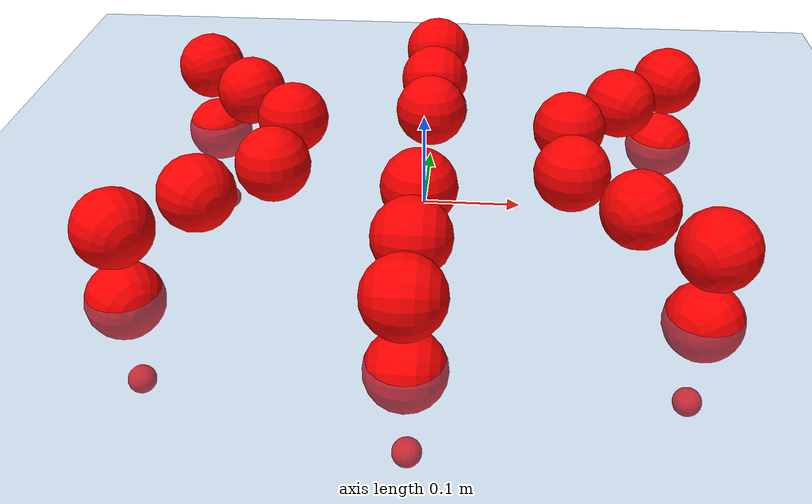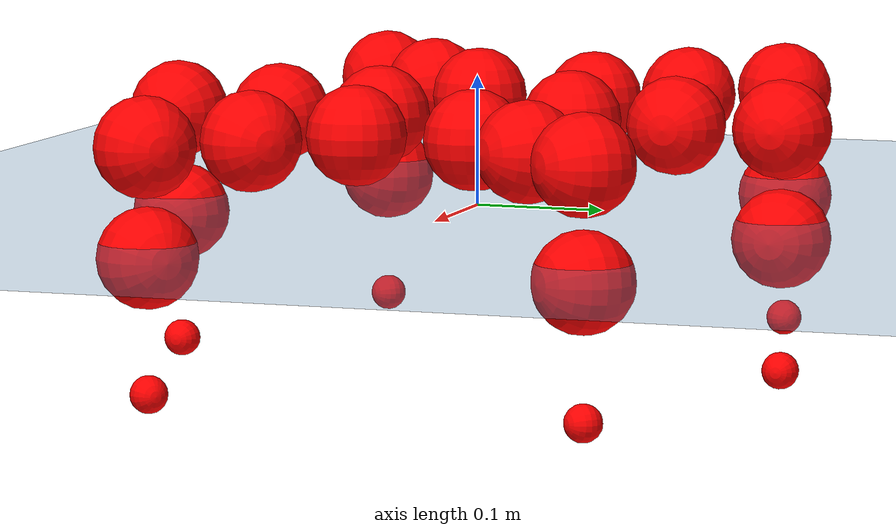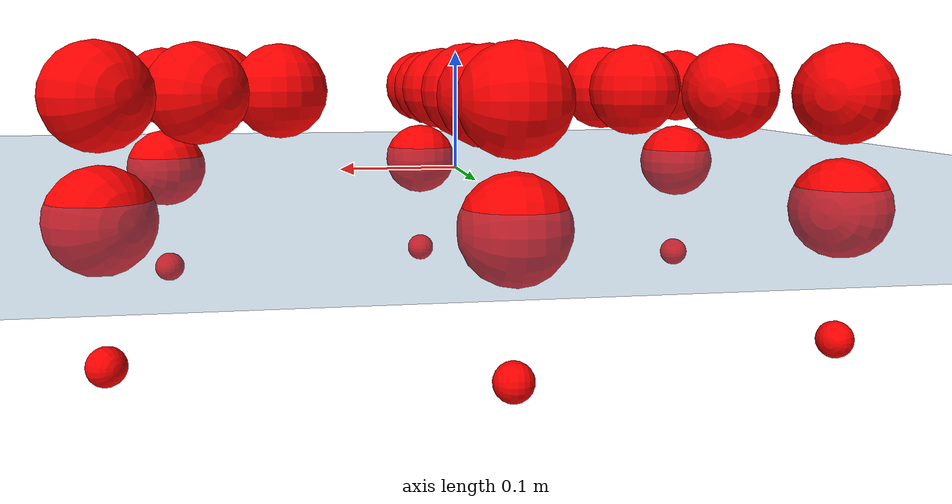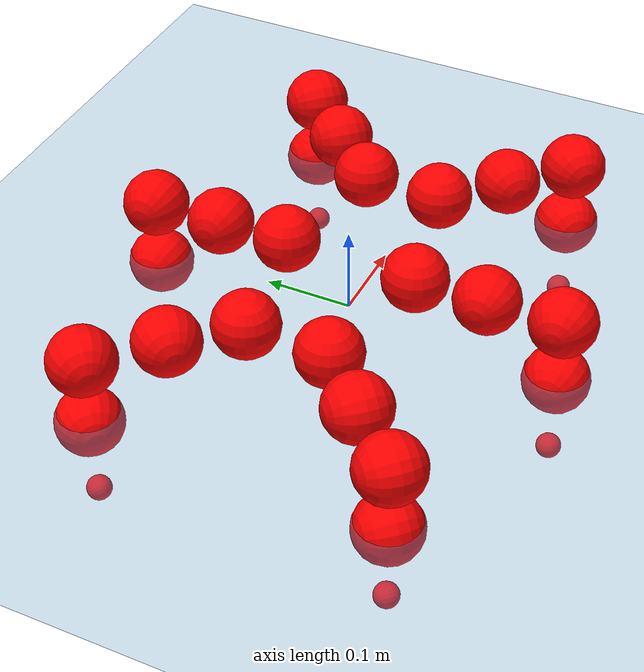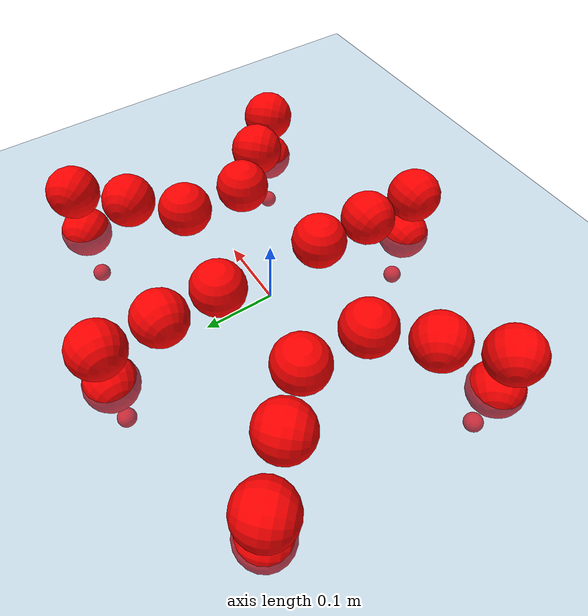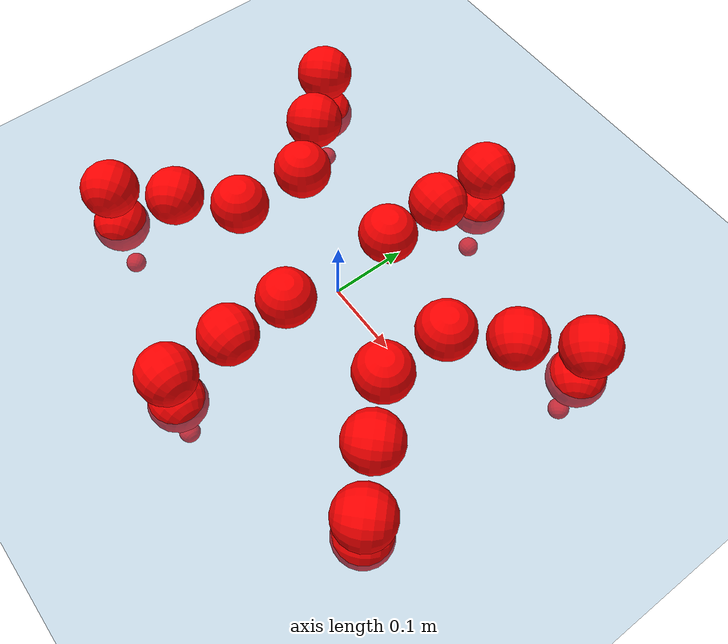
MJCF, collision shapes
<mujoco model="Golem">
  <compiler angle="radian" assetdir="assets" balanceinertia="true" inertiafromgeom="false"/>

  <option timestep="0.005" density="1.2" viscosity="2e-05"/>

  <size nkey="1"/>

  <visual>
    <quality shadowsize="8192"/>
    <map shadowclip="0.5"/>
  </visual>

  <default>
    <default class="/">
      <joint armature="0.01" damping="0.01" frictionloss="0.01"/>
      <geom contype="0" conaffinity="0" group="1" solref="-1000 -80"/>
      <site size="0.01 0.005 0.005" group="5"/>
      <general forcelimited="true" biastype="affine" gainprm="25" biasprm="0 -25 -0.5"/>
      <default class="visual">
        <geom type="mesh" group="2"/>
      </default>
      <default class="collision">
        <geom group="3"/>
      </default>
      <default class="foot">
        <geom size="0.01 0 0" condim="6" group="4" priority="1" solimp="0.015 1 0.01"/>
      </default>
      <default class="reward_collision_sphere">
        <geom group="5" rgba="1 0 0 1"/>
      </default>
    </default>
  </default>

  <asset>
    <texture type="skybox" colorspace="auto" name="//unnamed_texture_0" builtin="gradient" rgb1="0.95 0.95 0.95" rgb2="0.95 0.95 0.95" width="100" height="600"/>
    <texture type="2d" colorspace="auto" name="texplane" builtin="checker" rgb1="0.345 0.575 0.748" rgb2="0.345 0.575 0.748" markrgb="1 1 1" width="512" height="512"/>
    <material name="MatPlane" class="/" texture="texplane" texuniform="true" texrepeat="2 2" specular="0.9"/>
    <mesh name="body" class="/" file="body.stl" scale="0.001 0.001 0.001"/>
    <mesh name="coxa" class="/" file="coxa.stl" scale="0.001 0.001 0.001"/>
    <mesh name="femur" class="/" file="femur.stl" scale="0.001 0.001 0.001"/>
    <mesh name="tibia" class="/" file="tibia.stl" scale="0.001 0.001 0.001"/>
    <mesh name="tarsus" class="/" file="tarsus.stl" scale="0.001 0.001 0.001"/>
  </asset>

  <worldbody>
    <geom name="floor" class="/" size="100 100 0.125" type="plane" group="0" material="MatPlane"/>
    <light name="toplight_shadow" class="/" pos="0 0 5" dir="0.0990148 0.0990148 -0.990148" type="directional" ambient="0.04 0.04 0.04" diffuse="0.55 0.55 0.55" specular="0.12 0.12 0.12"/>
    <light name="toplight_fill" class="/" pos="0 0 5" dir="0.0990148 0.0990148 -0.990148" type="directional" castshadow="false" ambient="0.04 0.04 0.04" diffuse="0.3 0.3 0.3" specular="0.08 0.08 0.08"/>
    <body name="trunk" pos="0.000989808 0.000143307 -0.00155937" quat="1 -4.44786e-05 3.4566e-05 -1.18045e-05">
      <inertial pos="-0.000546195 -0.000368589 -0.00332709" quat="1 -0.000503357 -0.000714404 0.000184873" mass="3.0858" diaginertia="0.00693204 0.00312926 0.0156793"/>
      <joint name="//unnamed_joint_0" type="free"/>
      <geom name="//unnamed_geom_1" class="/" pos="0 0 0.0701529" quat="1 0 0 0" type="mesh" rgba="0.9 0.9 0.9 1" mesh="body"/>
      <site name="imu" class="/" pos="0.122389 -0.00198036 0.108203" size="0.00940745"/>
      <camera name="track" class="/" pos="0 -1.5856 0" quat="0.707107 0.707107 0 0" mode="trackcom"/>
      <camera name="ego_camera" class="/" pos="0.121328 0 0.109614" quat="-0.5 -0.5 0.5 0.5"/>
      <body name="coxa_RR" pos="-0.167288 -0.0669687 0.06962" quat="0.382517 2.95792e-05 6.3212e-05 -0.923949">
        <inertial pos="0.000232303 -0.00141362 0.000550042" quat="0.999999 -0.000444384 0.00020611 -0.0011623" mass="0.162724" diaginertia="0.00693618 0.0030872 0.0153229"/>
        <joint name="coxa_joint_RR" class="/" pos="0 0 0" axis="0.00524335 0.00118031 -0.999986" range="-3.1405 3.1474" armature="0.00981736" damping="0.0131675" frictionloss="0.00965367"/>
        <geom name="//unnamed_geom_2" class="/" type="mesh" rgba="0.2 0.2 0.2 1" mesh="coxa"/>
        <geom name="//unnamed_geom_3" class="reward_collision_sphere" size="0.0376298" pos="-0.0279988 0 0"/>
        <body name="femur_RR" pos="0.0569098 -0.000854244 0.000523552" quat="0.499902 -0.500091 0.500147 0.49986">
          <inertial pos="3.38327e-05 -0.000882229 0.000954245" quat="1 -0.00012503 -0.000552211 0.000443645" mass="0.166313" diaginertia="0.00704098 0.00311733 0.0157853"/>
          <joint name="femur_joint_RR" class="/" pos="0 0 0" axis="-0.000620058 0.00236146 -0.999997" stiffness="0.00253387" range="-3.14139 3.11677" armature="0.00961217" damping="0.00216654" frictionloss="0.00928862"/>
          <geom name="//unnamed_geom_4" class="/" type="mesh" rgba="0.9 0.9 0.9 1" mesh="femur"/>
          <geom name="//unnamed_geom_5" class="reward_collision_sphere" size="0.0376298"/>
          <body name="tibia_RR" pos="0.00111566 -0.0856798 0.00100452" quat="-8.24835e-05 1 0.000422923 -0.000193744">
            <inertial pos="-0.000534078 0.000761115 1.48502e-05" quat="1 1.2901e-05 -1.18516e-05 -7.40024e-06" mass="0.166298" diaginertia="0.00703466 0.00310615 0.0156418"/>
            <joint name="tibia_joint_RR" class="/" pos="0 0 0" axis="0.00163775 -0.00632034 0.999979" range="-3.16741 3.15711" armature="0.00944998" damping="0.000849115" frictionloss="0.00960521"/>
            <geom name="//unnamed_geom_6" class="/" type="mesh" rgba="0.2 0.2 0.2 1" mesh="tibia"/>
            <geom name="//unnamed_geom_7" class="reward_collision_sphere" size="0.0376298"/>
            <body name="tarsus_RR" pos="0.080915 0.00147306 0.000685353" quat="1 5.94527e-05 0.000103931 -3.25359e-05">
              <inertial pos="0.0559605 0.00141522 0.000143001" quat="0.500361 0.496828 0.50012 0.502674" mass="0.167266" diaginertia="0.00714671 0.00311223 0.0158884"/>
              <joint name="tarsus_joint_RR" class="/" pos="0 0 0" axis="0.000602695 0.000591807 1" range="-3.12805 3.14069" armature="0.00936027" damping="0.00841136" frictionloss="0.00949215"/>
              <geom name="//unnamed_geom_8" class="/" type="mesh" rgba="0.9 0.9 0.9 1" mesh="tarsus"/>
              <geom name="foot_1" class="foot" size="0.00943458" pos="0.104529 0 0" quat="0 -0.707107 0 0.707107"/>
              <geom name="//unnamed_geom_10" class="reward_collision_sphere" size="0.0376298"/>
              <geom name="//unnamed_geom_11" class="reward_collision_sphere" size="0.0141112" pos="0.100329 0 0"/>
              <site name="foot_1" class="foot" pos="0.104529 0 0" quat="0 -0.707107 0 0.707107" size="0.00940745"/>
            </body>
          </body>
        </body>
      </body>
      <body name="coxa_RM" pos="-0.00053903 -0.106371 0.0689657" quat="0.707001 -0.000317513 -0.00081414 -0.707212">
        <inertial pos="-0.000566045 2.90787e-05 0.00132626" quat="0.999996 -0.000961313 -0.00107106 0.0022416" mass="0.16491" diaginertia="0.00688016 0.00308634 0.0159578"/>
        <joint name="coxa_joint_RM" class="/" pos="0 0 0" axis="0.000167582 -0.000296964 -1" range="-3.1749 3.13357" armature="0.00989413" damping="0.014099" frictionloss="0.00941659"/>
        <geom name="//unnamed_geom_12" class="/" type="mesh" rgba="0.2 0.2 0.2 1" mesh="coxa"/>
        <geom name="//unnamed_geom_13" class="reward_collision_sphere" size="0.0376298" pos="-0.0279988 0 0"/>
        <body name="femur_RM" pos="0.0544811 -0.000395157 -0.00106098" quat="0.5 -0.500178 0.500183 0.499639">
          <inertial pos="-0.000871966 0.000870731 -0.000841841" quat="0.999992 -0.00109601 0.00211435 0.00331239" mass="0.166776" diaginertia="0.00709552 0.00313781 0.0158287"/>
          <joint name="femur_joint_RM" class="/" pos="0 0 0" axis="-0.000127008 -0.000355746 -1" range="-3.13334 3.13485" armature="0.00960182" damping="0.0115551" frictionloss="0.00983343"/>
          <geom name="//unnamed_geom_14" class="/" type="mesh" rgba="0.9 0.9 0.9 1" mesh="femur"/>
          <geom name="//unnamed_geom_15" class="reward_collision_sphere" size="0.0376298"/>
          <body name="tibia_RM" pos="0.000560857 -0.0843987 0.00050366" quat="1.20573e-05 1 1.76545e-05 0.000258083">
            <inertial pos="0.00104824 0.00106769 -0.000269681" quat="1 -7.88879e-05 0.000428622 0.000361604" mass="0.16959" diaginertia="0.0071848 0.00319384 0.0159457"/>
            <joint name="tibia_joint_RM" class="/" pos="0 0 0" axis="0.00284502 -0.00243449 0.999993" range="-3.14673 3.09846" armature="0.0090296" damping="0" frictionloss="0.00940152"/>
            <geom name="//unnamed_geom_16" class="/" type="mesh" rgba="0.2 0.2 0.2 1" mesh="tibia"/>
            <geom name="//unnamed_geom_17" class="reward_collision_sphere" size="0.0376298"/>
            <body name="tarsus_RM" pos="0.0804997 -0.00147074 -0.000549346" quat="1 -4.21163e-05 5.65206e-05 3.16037e-05">
              <inertial pos="0.0550235 0.00195399 -0.000674825" quat="0.499553 0.499968 0.500863 0.499615" mass="0.163195" diaginertia="0.00708492 0.00314716 0.0160568"/>
              <joint name="tarsus_joint_RM" class="/" pos="0 0 0" axis="0.00378703 0.00341947 0.999987" range="-3.13362 3.13271" armature="0.00903903" damping="0.00489782" frictionloss="0.00946304"/>
              <geom name="//unnamed_geom_18" class="/" type="mesh" rgba="0.9 0.9 0.9 1" mesh="tarsus"/>
              <geom name="foot_2" class="foot" size="0.00914417" pos="0.104529 0 0" quat="0 -0.707107 0 0.707107"/>
              <geom name="//unnamed_geom_20" class="reward_collision_sphere" size="0.0376298"/>
              <geom name="//unnamed_geom_21" class="reward_collision_sphere" size="0.0141112" pos="0.100329 0 0"/>
              <site name="foot_2" class="foot" pos="0.104529 0 0" quat="0 -0.707107 0 0.707107" size="0.00940745"/>
            </body>
          </body>
        </body>
      </body>
      <body name="coxa_RF" pos="0.165654 -0.0648896 0.0698232" quat="0.923815 1.76505e-06 3.02472e-05 -0.382839">
        <inertial pos="-0.000840953 -7.88977e-05 0.00077435" quat="0.999992 -0.000285539 -0.00121034 0.00392623" mass="0.169509" diaginertia="0.00730871 0.00312904 0.0163109"/>
        <joint name="coxa_joint_RF" class="/" pos="0 0 0" axis="-0.00622287 -0.00113623 -0.99998" range="-3.12425 3.14021" armature="0.00928543" damping="0.00206675" frictionloss="0.00910814"/>
        <geom name="//unnamed_geom_22" class="/" type="mesh" rgba="0.2 0.2 0.2 1" mesh="coxa"/>
        <geom name="//unnamed_geom_23" class="reward_collision_sphere" size="0.0376298" pos="-0.0279988 0 0"/>
        <body name="femur_RF" pos="0.0565146 -0.00105221 0.000179083" quat="0.499606 -0.500303 0.499994 0.500097">
          <inertial pos="-0.000513636 0.000951295 0.000641674" quat="0.999997 0.00226623 -0.00108169 -0.000829147" mass="0.161368" diaginertia="0.00703395 0.00307974 0.0156064"/>
          <joint name="femur_joint_RF" class="/" pos="0 0 0" axis="0.000361359 0.000171218 -1" range="-3.15807 3.11152" armature="0.00854716" damping="0.00924627" frictionloss="0.00857101"/>
          <geom name="//unnamed_geom_24" class="/" type="mesh" rgba="0.9 0.9 0.9 1" mesh="femur"/>
          <geom name="//unnamed_geom_25" class="reward_collision_sphere" size="0.0376298"/>
          <body name="tibia_RF" pos="-0.000202243 -0.0841576 0.00108294" quat="-1.77714e-05 1 -2.51459e-06 -0.000152622">
            <inertial pos="-0.00117776 -2.68971e-06 -0.00013906" quat="1 -2.67315e-05 5.57419e-05 -5.3329e-05" mass="0.168507" diaginertia="0.00711308 0.00315249 0.0159195"/>
            <joint name="tibia_joint_RF" class="/" pos="0 0 0" axis="-0.000824345 0.00229566 0.999997" range="-3.15196 3.13909" armature="0.00943573" damping="0" frictionloss="0.0090428"/>
            <geom name="//unnamed_geom_26" class="/" type="mesh" rgba="0.2 0.2 0.2 1" mesh="tibia"/>
            <geom name="//unnamed_geom_27" class="reward_collision_sphere" size="0.0376298"/>
            <body name="tarsus_RF" pos="0.0808526 -0.00131394 -0.00030905" quat="1 -0.00011479 -8.10641e-05 -5.35514e-05">
              <inertial pos="0.0551588 0.000987425 0.000130857" quat="0.499623 0.507855 0.497803 0.494624" mass="0.168861" diaginertia="0.00716121 0.00315862 0.0156925"/>
              <joint name="tarsus_joint_RF" class="/" pos="0 0 0" axis="-0.00133343 0.00060446 0.999999" range="-3.13743 3.14081" armature="0.00870493" damping="0.00563407" frictionloss="0.00908098"/>
              <geom name="//unnamed_geom_28" class="/" type="mesh" rgba="0.9 0.9 0.9 1" mesh="tarsus"/>
              <geom name="foot_3" class="foot" size="0.0094998" pos="0.104529 0 0" quat="0 -0.707107 0 0.707107"/>
              <geom name="//unnamed_geom_30" class="reward_collision_sphere" size="0.0376298"/>
              <geom name="//unnamed_geom_31" class="reward_collision_sphere" size="0.0141112" pos="0.100329 0 0"/>
              <site name="foot_3" class="foot" pos="0.104529 0 0" quat="0 -0.707107 0 0.707107" size="0.00940745"/>
            </body>
          </body>
        </body>
      </body>
      <body name="coxa_LR" pos="-0.164794 0.0689105 0.0699937" quat="0.382644 0.000113004 9.73945e-06 0.923896">
        <inertial pos="-0.000820152 -7.30636e-05 0.000252997" quat="0.999973 -0.00673781 0.000375058 0.00280303" mass="0.168955" diaginertia="0.00704017 0.00316244 0.0158037"/>
        <joint name="coxa_joint_LR" class="/" pos="0 0 0" axis="0.00154391 -0.0027489 -0.999995" range="-3.13385 3.11931" armature="0.00952211" damping="0.00926093" frictionloss="0.00902859"/>
        <geom name="//unnamed_geom_32" class="/" type="mesh" rgba="0.2 0.2 0.2 1" mesh="coxa"/>
        <geom name="//unnamed_geom_33" class="reward_collision_sphere" size="0.0376298" pos="-0.0279988 0 0"/>
        <body name="femur_LR" pos="0.0557857 -0.00189948 -2.48611e-05" quat="0.499956 -0.500098 0.499933 0.500013">
          <inertial pos="-0.000880158 -0.00151743 0.00113037" quat="1 -4.39195e-05 -2.60236e-05 8.5525e-05" mass="0.167223" diaginertia="0.00691741 0.00313317 0.0157746"/>
          <joint name="femur_joint_LR" class="/" pos="0 0 0" axis="0.00535696 0.0056711 0.99997" range="-3.13487 3.13832" armature="0.0103634" damping="0.00686731" frictionloss="0.00912541"/>
          <geom name="//unnamed_geom_34" class="/" type="mesh" rgba="0.9 0.9 0.9 1" mesh="femur"/>
          <geom name="//unnamed_geom_35" class="reward_collision_sphere" size="0.0376298"/>
          <body name="tibia_LR" pos="0.000518373 -0.0877883 -0.000884929" quat="0.000147443 1 -4.83024e-05 5.60099e-05">
            <inertial pos="-0.000739774 -0.00113301 0.000459001" quat="0.999989 0.00112037 -0.00395372 0.00226314" mass="0.166731" diaginertia="0.00716097 0.00310571 0.0155531"/>
            <joint name="tibia_joint_LR" class="/" pos="0 0 0" axis="-0.00341358 0.000278678 -0.999994" range="-3.13681 3.11925" armature="0.00943924" damping="0" frictionloss="0.0092697"/>
            <geom name="//unnamed_geom_36" class="/" type="mesh" rgba="0.2 0.2 0.2 1" mesh="tibia"/>
            <geom name="//unnamed_geom_37" class="reward_collision_sphere" size="0.0376298"/>
            <body name="tarsus_LR" pos="0.0849089 0.000531512 0.00113897" quat="1 4.70799e-05 0.000103979 0.000206992">
              <inertial pos="0.0583149 -0.000709742 -6.5515e-06" quat="0.500136 0.500201 0.4996 0.500063" mass="0.168114" diaginertia="0.00707148 0.00311194 0.0158537"/>
              <joint name="tarsus_joint_LR" class="/" pos="0 0 0" axis="0.000824718 -0.00577318 -0.999983" range="-3.14298 3.13061" armature="0.00917048" damping="0.0273072" frictionloss="0.0094885"/>
              <geom name="//unnamed_geom_38" class="/" type="mesh" rgba="0.9 0.9 0.9 1" mesh="tarsus"/>
              <geom name="foot_4" class="foot" size="0.00932877" pos="0.104529 0 0" quat="0.707107 0 -0.707107 0"/>
              <geom name="//unnamed_geom_40" class="reward_collision_sphere" size="0.0376298"/>
              <geom name="//unnamed_geom_41" class="reward_collision_sphere" size="0.0141112" pos="0.100329 0 0"/>
              <site name="foot_4" class="foot" pos="0.104529 0 0" quat="0.707107 0 -0.707107 0" size="0.00940745"/>
            </body>
          </body>
        </body>
      </body>
      <body name="coxa_LM" pos="0.00101285 0.103953 0.0703757" quat="0.707391 -7.46391e-05 -0.000271995 0.706823">
        <inertial pos="-0.000201693 -0.000862542 -0.000561158" quat="0.999989 -0.000395709 0.0016895 0.00426031" mass="0.164867" diaginertia="0.00710592 0.00316338 0.0157129"/>
        <joint name="coxa_joint_LM" class="/" pos="0 0 0" axis="0.0037139 -0.0039919 -0.999985" range="-3.15925 3.17386" armature="0.00941166" damping="0.0104461" frictionloss="0.00946354"/>
        <geom name="//unnamed_geom_42" class="/" type="mesh" rgba="0.2 0.2 0.2 1" mesh="coxa"/>
        <geom name="//unnamed_geom_43" class="reward_collision_sphere" size="0.0376298" pos="-0.0279988 0 0"/>
        <body name="femur_LM" pos="0.0540751 0.00110005 -0.00166552" quat="0.499695 -0.50037 0.499997 0.499938">
          <inertial pos="-0.000102981 -0.000798706 0.000250533" quat="0.999999 6.37938e-05 -0.000933716 -0.00124019" mass="0.169991" diaginertia="0.00710203 0.00314422 0.0159315"/>
          <joint name="femur_joint_LM" class="/" pos="0 0 0" axis="3.45285e-05 0.00204396 0.999998" stiffness="0.00372067" range="-3.16482 3.1157" armature="0.00908272" damping="0" frictionloss="0.00926877"/>
          <geom name="//unnamed_geom_44" class="/" type="mesh" rgba="0.9 0.9 0.9 1" mesh="femur"/>
          <geom name="//unnamed_geom_45" class="reward_collision_sphere" size="0.0376298"/>
          <body name="tibia_LM" pos="-4.09861e-05 -0.0823765 0.000879499" quat="-0.000124696 1 -0.000364601 0.00010666">
            <inertial pos="-0.000493375 -0.00121388 -0.00026916" quat="0.999991 0.00328567 -0.00233107 -0.0016558" mass="0.162995" diaginertia="0.00703462 0.00303564 0.0155387"/>
            <joint name="tibia_joint_LM" class="/" pos="0 0 0" axis="0.0016685 -0.00269313 -0.999995" range="-3.13652 3.14202" armature="0.00892569" damping="0" frictionloss="0.00955622"/>
            <geom name="//unnamed_geom_46" class="/" type="mesh" rgba="0.2 0.2 0.2 1" mesh="tibia"/>
            <geom name="//unnamed_geom_47" class="reward_collision_sphere" size="0.0376298"/>
            <body name="tarsus_LM" pos="0.0826459 -0.000262549 -0.000399459" quat="1 1.43633e-05 -5.9422e-06 -6.34888e-06">
              <inertial pos="0.0564394 0.000242994 0.000380714" quat="0.500758 0.50129 0.502018 0.495911" mass="0.168724" diaginertia="0.0069381 0.00314947 0.0158257"/>
              <joint name="tarsus_joint_LM" class="/" pos="0 0 0" axis="0.000999423 -0.000397952 -0.999999" range="-3.12348 3.13293" armature="0.00920527" damping="0" frictionloss="0.00936876"/>
              <geom name="//unnamed_geom_48" class="/" type="mesh" rgba="0.9 0.9 0.9 1" mesh="tarsus"/>
              <geom name="foot_5" class="foot" size="0.0088278" pos="0.104529 0 0" quat="0.707107 0 -0.707107 0"/>
              <geom name="//unnamed_geom_50" class="reward_collision_sphere" size="0.0376298"/>
              <geom name="//unnamed_geom_51" class="reward_collision_sphere" size="0.0141112" pos="0.100329 0 0"/>
              <site name="foot_5" class="foot" pos="0.104529 0 0" quat="0.707107 0 -0.707107 0" size="0.00940745"/>
            </body>
          </body>
        </body>
      </body>
      <body name="coxa_LF" pos="0.167572 0.0667287 0.0701295" quat="0.924022 0.000446568 0.000370357 0.382339">
        <inertial pos="1.09882e-05 0.000315172 0.00056263" quat="0.999998 0.000209636 0.000343005 0.00180364" mass="0.16893" diaginertia="0.00711469 0.00308826 0.0160404"/>
        <joint name="coxa_joint_LF" class="/" pos="0 0 0" axis="0.00162772 0.0056776 -0.999983" range="-3.1336 3.14877" armature="0.00964229" damping="2.34195e-05" frictionloss="0.0091813"/>
        <geom name="//unnamed_geom_52" class="/" type="mesh" rgba="0.2 0.2 0.2 1" mesh="coxa"/>
        <geom name="//unnamed_geom_53" class="reward_collision_sphere" size="0.0376298" pos="-0.0279988 0 0"/>
        <body name="femur_LF" pos="0.0558953 0.00103619 0.000170772" quat="0.500362 -0.499838 0.499914 0.499885">
          <inertial pos="9.41929e-05 -0.000324574 0.0011894" quat="0.999999 0.0014829 9.99814e-05 -0.0002863" mass="0.170774" diaginertia="0.00706529 0.00314162 0.0158068"/>
          <joint name="femur_joint_LF" class="/" pos="0 0 0" axis="-0.00110675 0.000649956 0.999999" range="-3.1284 3.14178" armature="0.00939656" damping="0" frictionloss="0.00981914"/>
          <geom name="//unnamed_geom_54" class="/" type="mesh" rgba="0.9 0.9 0.9 1" mesh="femur"/>
          <geom name="//unnamed_geom_55" class="reward_collision_sphere" size="0.0376298"/>
          <body name="tibia_LF" pos="0.000200483 -0.0840962 0.0013867" quat="-0.000451674 1 0.00044782 -0.000374616">
            <inertial pos="5.17701e-05 0.00113108 -0.00107902" quat="0.999975 0.00576024 -0.0015664 0.00370486" mass="0.167564" diaginertia="0.00706131 0.00314695 0.015852"/>
            <joint name="tibia_joint_LF" class="/" pos="0 0 0" axis="-0.000251086 -0.00181867 -0.999998" range="-3.10069 3.1195" armature="0.00921658" damping="0.00745882" frictionloss="0.00940381"/>
            <geom name="//unnamed_geom_56" class="/" type="mesh" rgba="0.2 0.2 0.2 1" mesh="tibia"/>
            <geom name="//unnamed_geom_57" class="reward_collision_sphere" size="0.0376298"/>
            <body name="tarsus_LF" pos="0.0829975 0.00100468 0.00029216" quat="1 0.00039013 3.65569e-06 0.000288708">
              <inertial pos="0.0547568 0.000814914 -0.000389787" quat="0.500003 0.5 0.499996 0.500001" mass="0.168149" diaginertia="0.00715907 0.00316023 0.0161289"/>
              <joint name="tarsus_joint_LF" class="/" pos="0 0 0" axis="0.000183419 0.00534861 -0.999986" range="-3.14413 3.12953" armature="0.00988812" damping="0.0139085" frictionloss="0.0102776"/>
              <geom name="//unnamed_geom_58" class="/" type="mesh" rgba="0.9 0.9 0.9 1" mesh="tarsus"/>
              <geom name="foot_6" class="foot" size="0.00921416" pos="0.104529 0 0" quat="0.707107 0 -0.707107 0"/>
              <geom name="//unnamed_geom_60" class="reward_collision_sphere" size="0.0376298"/>
              <geom name="//unnamed_geom_61" class="reward_collision_sphere" size="0.0141112" pos="0.100329 0 0"/>
              <site name="foot_6" class="foot" pos="0.104529 0 0" quat="0.707107 0 -0.707107 0" size="0.00940745"/>
            </body>
          </body>
        </body>
      </body>
    </body>
  </worldbody>

  <contact>
    <pair class="/" geom1="floor" geom2="foot_1" name="//unnamed_contact_0"/>
    <pair class="/" geom1="floor" geom2="foot_2" name="//unnamed_contact_1"/>
    <pair class="/" geom1="floor" geom2="foot_3" name="//unnamed_contact_2"/>
    <pair class="/" geom1="floor" geom2="foot_4" name="//unnamed_contact_3"/>
    <pair class="/" geom1="floor" geom2="foot_5" name="//unnamed_contact_4"/>
    <pair class="/" geom1="floor" geom2="foot_6" name="//unnamed_contact_5"/>
  </contact>

  <actuator>
    <general name="coxa_joint_RR" class="/" joint="coxa_joint_RR" forcerange="-6.71185 6.71185" gainprm="22.9804" biasprm="0 -22.9804 -0.492546"/>
    <general name="femur_joint_RR" class="/" joint="femur_joint_RR" forcerange="-6.85704 6.85704" gainprm="22.9804" biasprm="0 -22.9804 -0.492546"/>
    <general name="tibia_joint_RR" class="/" joint="tibia_joint_RR" forcerange="-6.83598 6.83598" gainprm="22.9804" biasprm="0 -22.9804 -0.492546"/>
    <general name="tarsus_joint_RR" class="/" joint="tarsus_joint_RR" forcerange="-6.74775 6.74775" gainprm="22.9804" biasprm="0 -22.9804 -0.492546"/>
    <general name="coxa_joint_RM" class="/" joint="coxa_joint_RM" forcerange="-6.54914 6.54914" gainprm="22.9804" biasprm="0 -22.9804 -0.492546"/>
    <general name="femur_joint_RM" class="/" joint="femur_joint_RM" forcerange="-6.96085 6.96085" gainprm="22.9804" biasprm="0 -22.9804 -0.492546"/>
    <general name="tibia_joint_RM" class="/" joint="tibia_joint_RM" forcerange="-6.90548 6.90548" gainprm="22.9804" biasprm="0 -22.9804 -0.492546"/>
    <general name="tarsus_joint_RM" class="/" joint="tarsus_joint_RM" forcerange="-6.88991 6.88991" gainprm="22.9804" biasprm="0 -22.9804 -0.492546"/>
    <general name="coxa_joint_RF" class="/" joint="coxa_joint_RF" forcerange="-6.97197 6.97197" gainprm="22.9804" biasprm="0 -22.9804 -0.492546"/>
    <general name="femur_joint_RF" class="/" joint="femur_joint_RF" forcerange="-7.36349 7.36349" gainprm="22.9804" biasprm="0 -22.9804 -0.492546"/>
    <general name="tibia_joint_RF" class="/" joint="tibia_joint_RF" forcerange="-7.21819 7.21819" gainprm="22.9804" biasprm="0 -22.9804 -0.492546"/>
    <general name="tarsus_joint_RF" class="/" joint="tarsus_joint_RF" forcerange="-7.13411 7.13411" gainprm="22.9804" biasprm="0 -22.9804 -0.492546"/>
    <general name="coxa_joint_LR" class="/" joint="coxa_joint_LR" forcerange="-6.82998 6.82998" gainprm="22.9804" biasprm="0 -22.9804 -0.492546"/>
    <general name="femur_joint_LR" class="/" joint="femur_joint_LR" forcerange="-6.8169 6.8169" gainprm="22.9804" biasprm="0 -22.9804 -0.492546"/>
    <general name="tibia_joint_LR" class="/" joint="tibia_joint_LR" forcerange="-7.33371 7.33371" gainprm="22.9804" biasprm="0 -22.9804 -0.492546"/>
    <general name="tarsus_joint_LR" class="/" joint="tarsus_joint_LR" forcerange="-7.21576 7.21576" gainprm="22.9804" biasprm="0 -22.9804 -0.492546"/>
    <general name="coxa_joint_LM" class="/" joint="coxa_joint_LM" forcerange="-6.85989 6.85989" gainprm="22.9804" biasprm="0 -22.9804 -0.492546"/>
    <general name="femur_joint_LM" class="/" joint="femur_joint_LM" forcerange="-6.74083 6.74083" gainprm="22.9804" biasprm="0 -22.9804 -0.492546"/>
    <general name="tibia_joint_LM" class="/" joint="tibia_joint_LM" forcerange="-6.84907 6.84907" gainprm="22.9804" biasprm="0 -22.9804 -0.492546"/>
    <general name="tarsus_joint_LM" class="/" joint="tarsus_joint_LM" forcerange="-7.10888 7.10888" gainprm="22.9804" biasprm="0 -22.9804 -0.492546"/>
    <general name="coxa_joint_LF" class="/" joint="coxa_joint_LF" forcerange="-6.84228 6.84228" gainprm="22.9804" biasprm="0 -22.9804 -0.492546"/>
    <general name="femur_joint_LF" class="/" joint="femur_joint_LF" forcerange="-7.10166 7.10166" gainprm="22.9804" biasprm="0 -22.9804 -0.492546"/>
    <general name="tibia_joint_LF" class="/" joint="tibia_joint_LF" forcerange="-7.01624 7.01624" gainprm="22.9804" biasprm="0 -22.9804 -0.492546"/>
    <general name="tarsus_joint_LF" class="/" joint="tarsus_joint_LF" forcerange="-6.9832 6.9832" gainprm="22.9804" biasprm="0 -22.9804 -0.492546"/>
  </actuator>

  <sensor>
    <gyro site="imu" name="imu_angular_velocity"/>
    <velocimeter site="imu" name="imu_linear_velocity"/>
    <framelinvel objtype="site" objname="foot_1" name="foot_1_global_linear_velocity"/>
    <framelinvel objtype="site" objname="foot_2" name="foot_2_global_linear_velocity"/>
    <framelinvel objtype="site" objname="foot_3" name="foot_3_global_linear_velocity"/>
    <framelinvel objtype="site" objname="foot_4" name="foot_4_global_linear_velocity"/>
    <framelinvel objtype="site" objname="foot_5" name="foot_5_global_linear_velocity"/>
    <framelinvel objtype="site" objname="foot_6" name="foot_6_global_linear_velocity"/>
  </sensor>

  <keyframe>
    <key name="home" qpos="0 0 0.1457 1 0 0 0 0 0 0 0 0 0 0 0 0 0 0 0 0 0 0 0 0 0 0 0 0 0 0 0"/>
  </keyframe>
</mujoco>
